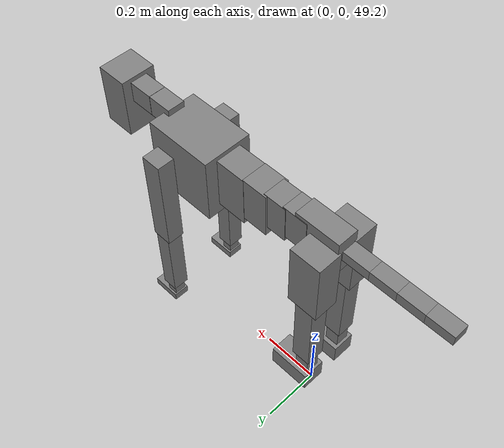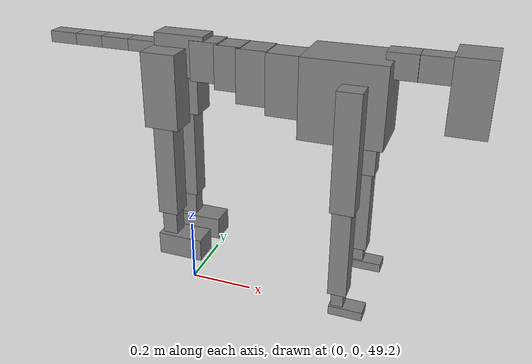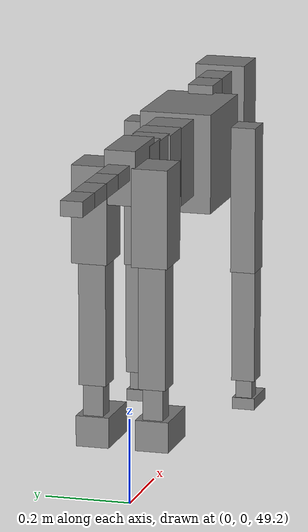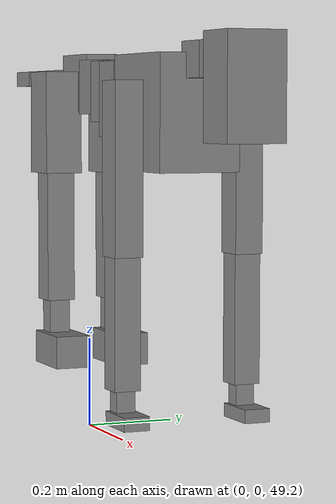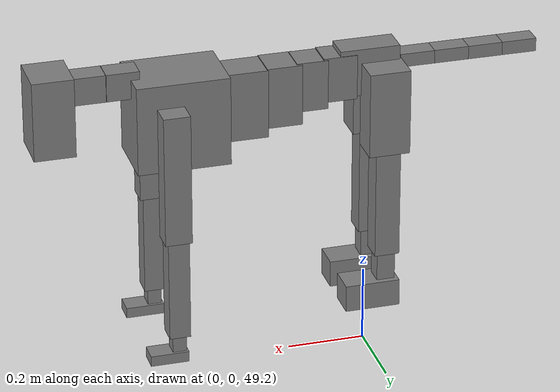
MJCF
<mujoco model="dog">

    <default>
        <joint armature="0.02" stiffness="1" damping="0.2" limited="true"/>
        <geom condim="3" friction="1 0.05 0.05" margin="0.01"/>
        <motor ctrllimited="true" ctrlrange="-1.0 1.0" forcelimited="true" gear="50"/>
    </default>

    <compiler inertiafromgeom="true" angle="radian"/>

    <option timestep="0.016" iterations="50" tolerance="1e-10" solver="Newton" jacobian="dense" cone="pyramidal"/>

    <size nconmax="20000" njmax="60000" nstack="5000000"/>
    <visual>
        <map force="0.1" zfar="30"/>
        <rgba haze="0.15 0.25 0.35 1"/>
        <quality shadowsize="2048"/>
        <global offwidth="800" offheight="800"/>
    </visual>

    <asset>
        <texture type="skybox" builtin="gradient" rgb1="0.3 0.5 0.7" rgb2="0 0 0" width="512" height="512"/>
        <texture name="texplane" type="2d" builtin="checker" rgb1=".2 .3 .4" rgb2=".1 0.15 0.2" width="512" height="512"
                 mark="cross" markrgb=".8 .8 .8"/>
        <texture name="texgeom" type="cube" builtin="flat" mark="cross" width="127" height="1278" rgb1="0.8 0.6 0.4"
                 rgb2="0.8 0.6 0.4" markrgb="1 1 1" random="0.01"/>

        <material name="matplane" reflectance="0.3" texture="texplane" texrepeat="1 1" texuniform="true"/>
        <material name="matgeom" texture="texgeom" texuniform="true" rgba="0.8 0.6 .4 1"/>
    </asset>

    <worldbody>
        <geom name="floor" pos="0 0 0" size="0 0 .25" type="plane" material="matplane" condim="3"/>

        <light directional="false" diffuse=".2 .2 .2" specular="0 0 0" pos="0 0 5" dir="0 0 -1" castshadow="false"/>
        <light mode="targetbodycom" target="torso" directional="false" diffuse=".8 .8 .8" specular="0.3 0.3 0.3"
               pos="0 0 4.0" dir="0 0 -1"/>

        <body name="root" pos="0 0 50">
            <freejoint name="root_1"/>
            <geom type="box" pos="0 0 -0.02" size="0.0774  0.0358  0.063" density="2030"/>

            <body name="spine1" pos="0.054 0 0">
                <joint name="spine1_y" axis="0 1 0" range="0 0.7" limited="true"/>
                <geom type="box" pos="0.02375 0 -0.03" size="0.04375  0.0375  0.05985" density="2030"/>

                <body name="spine2" pos="0.0612 0 0">
                    <joint name="spine2_y" axis="0 1 0" range="-0.15 0.15" limited="true"/>
                    <geom type="box" pos="0.03555  0  -0.04" size="0.04055  0.039  0.06615" density="2030"/>

                    <body name="spine3" pos="0.0730 0 0">
                        <joint name="spine3_y" axis="0 1 0" range="-0.15 0.15" limited="true"/>
                        <geom type="box" pos="0.03555  0  -0.057" size="0.04555  0.0445  0.081" density="2030"/>

                        <body name="spine4" pos="0.0780 0 0">
                            <joint name="spine4_y" axis="0 1 0" range="-0.15 0.15" limited="true"/>
                            <geom type="box" pos="0.05265  0  -0.07" size="0.05265  0.045  0.09135" density="2030"/>

                            <body name="torso" pos="0.1082 0 0">
                                <joint name="torso_y" axis="0 1 0" range="-0.15 0.15" limited="true"/>
                                <geom type="box" pos="0.11925  0  -0.085" size="0.11925  0.085  0.11745"
                                      density="2030"/>

                                <body name="neck1" pos="0.2160  0   0.0180">
                                    <joint name="neck1_y" axis="0 1 0" range="-1.2  -1" limited="true"/>
                                    <geom type="box" pos="0.0423  0  0" size="0.0423  0.03  0.036" density="2325"/>

                                    <body name="neck2" pos="0.0853  0  0">
                                        <joint name="neck2_y" axis="0 1 0" range="0.1  0" limited="true"/>
                                        <geom type="box" pos="0.0423  0  0" size="0.0423  0.03  0.036" density="2325"/>

                                        <body name="head" pos="0.0853  0  0">
                                            <joint name="head_y" axis="0 1 0" range="-0.3  -0.2" limited="true"/>
                                            <geom type="box" pos="0.0531  0  -0.055" size="0.0531  0.06  0.1044"
                                                  density="4030"/>

                                        </body>
                                    </body>
                                </body>

                                <body name="front_shoulder" pos="0.156  0   -0.0480">
                                    <joint name="front_shoulder_y" axis="0 1 0" range="-1 1.5" limited="true"/>
                                    <geom type="box" pos="0 0.13 -0.1473" size="0.0344  0.0294  0.1739" density="1158"/>
                                    <geom type="box" pos="0 -0.13 -0.1473" size="0.0344  0.0294  0.1739"
                                          density="1158"/>

                                    <body name="front_elbow" pos="0  0  -0.2946">
                                        <joint name="front_elbow_y" axis="0 1 0" range="-2 0" limited="true"/>
                                        <geom type="box" pos="0 0.13 -0.1459" size="0.0272  0.0278  0.1459"
                                              density="1081"/>
                                        <geom type="box" pos="0 -0.13 -0.1459" size="0.0272  0.0278  0.1459"
                                              density="1081"/>

                                        <body name="front_wrist" pos="0  0  -0.2918">
                                            <joint name="front_wrist_y" axis="0 1 0" range="-0.2 0" limited="true"/>
                                            <geom type="box" pos="0 0.13 -0.0292" size="0.0179  0.0199  0.0424"
                                                  density="1664"/>
                                            <geom type="box" pos="0 -0.13 -0.0292" size="0.0179  0.0199  0.0424"
                                                  density="1664"/>

                                            <body name="front_finger_end" pos="0  0  -0.0585">
                                                <joint name="front_finger_y" axis="0 1 0" range="-0.4 1"
                                                       limited="true"/>
                                                <geom type="box" pos="0.0270  0.13  0.0012"
                                                      size="0.0495  0.0270  0.0138" density="1515"/>
                                                <geom type="box" pos="0.0270  -0.13  0.0012"
                                                      size="0.0495  0.0270  0.0138" density="1515"/>

                                            </body>

                                        </body>
                                    </body>
                                </body>

                            </body>
                        </body>
                    </body>
                </body>
            </body>

            <body name="back_hip" pos="-0.03 0 -0.018">
                <joint name="back_hip_y" axis="0 1 0" range="-1.5 0.3" limited="true"/>
                <geom type="box" pos="0 0.07 -0.0905" size="0.0529  0.0415  0.1133" density="1154"/>
                <geom type="box" pos="0 -0.07 -0.0905" size="0.0529  0.0415  0.1133" density="1154"/>

                <body name="back_knee" pos="0  0  -0.1810">
                    <joint name="back_knee_y" axis="0 1 0" range="0 2.8" limited="true"/>
                    <geom type="box" pos="0 0.07 -0.1476" size="0.0322  0.0317  0.1631" density="1227"/>
                    <geom type="box" pos="0 -0.07 -0.1476" size="0.0322  0.0317  0.1631" density="1227"/>

                    <body name="back_ankle" pos="0  0  -0.2952">
                        <joint name="back_ankle_y" axis="0 1 0" range="-2.2 0" limited="true"/>
                        <geom type="box" pos="0 0.07 -0.0520" size="0.0236  0.0236  0.0632" density="1284"/>
                        <geom type="box" pos="0 -0.07 -0.0520" size="0.0236  0.0236  0.0632" density="1284"/>

                        <body name="back_toe_end" pos="0  0  -0.1039">
                            <joint name="back_toe_y" axis="0 1 0" range="-0.4 1" limited="true"/>
                            <geom type="box" pos="0.0388  0.07  -0.0207" size="0.0712  0.0388  0.0357" density="1515"/>
                            <geom type="box" pos="0.0388  -0.07  -0.0207" size="0.0712  0.0388  0.0357" density="1515"/>

                        </body>
                    </body>
                </body>
            </body>

            <body name="tail1" pos="-0.074 0 -0.006">
                <joint name="tail1_y" axis="0 1 0" range="-0.2 0.2" limited="true"/>
                <geom type="box" pos="-0.0536  0  0" size="0.045  0.025  0.0175" density="1587"/>

                <body name="tail2" pos="-0.09 0 0">
                    <joint name="tail2_y" axis="0 1 0" range="-0.2 0.2" limited="true"/>
                    <geom type="box" pos="-0.0536  0  0" size="0.045  0.025  0.0175" density="1587"/>

                    <body name="tail3" pos="-0.09 0 0">
                        <joint name="tail3_y" axis="0 1 0" range="-0.2 0.2" limited="true"/>
                        <geom type="box" pos="-0.0536  0  0" size="0.045  0.025  0.0175" density="1587"/>

                        <body name="tail4" pos="-0.09 0 0">
                            <joint name="tail4_y" axis="0 1 0" range="-0.2 0.2" limited="true"/>
                            <geom type="box" pos="-0.0536  0  0" size="0.045  0.025  0.0175" density="1587"/>

                        </body>
                    </body>
                </body>
            </body>
        </body>
    </worldbody>

    <actuator>
        <motor joint="spine1_y" forcerange="-150 150     "/>
        <motor joint="spine2_y" forcerange="-150 150     "/>
        <motor joint="spine3_y" forcerange="-150 150     "/>
        <motor joint="spine4_y" forcerange="-150 150     "/>
        <motor joint="torso_y" forcerange="-150 150     "/>
        <motor joint="neck1_y" forcerange="-100 100       "/>
        <motor joint="neck2_y" forcerange="-100 100       "/>
        <motor joint="head_y" forcerange="-150 150       "/>
        <motor joint="front_shoulder_y" forcerange="-161.02 135.26"/>
        <motor joint="front_elbow_y" forcerange="-179.55 122.96"/>
        <motor joint="front_wrist_y" forcerange="-84.85 74.54"/>
        <motor joint="front_finger_y" forcerange="-62.91 41.23"/>
        <motor joint="back_hip_y" forcerange="-373.72 379.53"/>
        <motor joint="back_knee_y" forcerange="-311.95 349.27"/>
        <motor joint="back_angle_y" forcerange="-135.10 143.02"/>
        <motor joint="back_toe_y" forcerange="-106.90 123.80"/>
        <motor joint="tail1_y" forcerange="-50 50     "/>
        <motor joint="tail2_y" forcerange="-50 50     "/>
        <motor joint="tail3_y" forcerange="-50 50     "/>
        <motor joint="tail4_y" forcerange="-50 50     "/>
    </actuator>
</mujoco>
